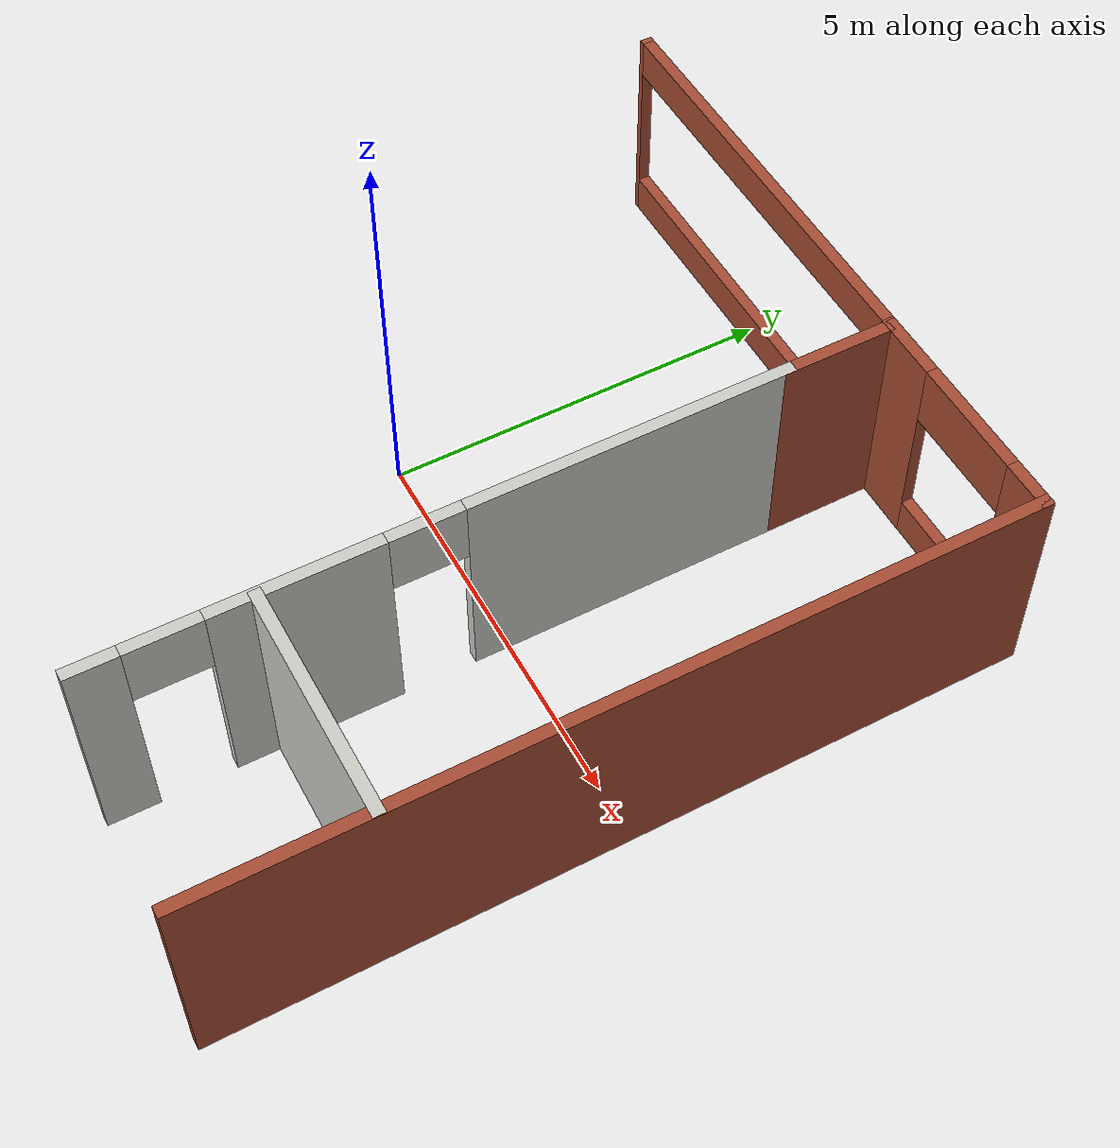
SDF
<sdf version="1.6">
 <model name="house">
  <link name="Wall_3">
   <pose>0.074445 4.925 0 0 -0 0</pose>
   <visual name="Wall_3_Visual_0">
    <pose>-2.76234 0 1.4 0 -0 0</pose>
    <geometry><box><size>0.07533 0.15 2.8</size></box></geometry>
    <material>
     <script><uri>file://media/materials/scripts/gazebo.material</uri><name>Gazebo/Bricks</name></script>
     <ambient>1 1 1 1</ambient>
     <shader type="pixel"/>
     <diffuse>1 1 1 1</diffuse>
     <specular>0.2 0.2 0.2 1</specular>
     <emissive>0 0 0 1</emissive>
    </material>
    <meta><layer>0</layer></meta>
   </visual>
   <visual name="Wall_3_Visual_2">
    <pose>2.71166 0 1.65 0 -0 0</pose>
    <geometry><box><size>0.17667 0.15 2.3</size></box></geometry>
    <material>
     <script><uri>file://media/materials/scripts/gazebo.material</uri><name>Gazebo/Bricks</name></script>
     <ambient>1 1 1 1</ambient>
     <shader type="pixel"/>
     <diffuse>1 1 1 1</diffuse>
     <specular>0.2 0.2 0.2 1</specular>
     <emissive>0 0 0 1</emissive>
    </material>
    <meta><layer>0</layer></meta>
   </visual>
   <visual name="Wall_3_Visual_1">
    <pose>0.037665 0 0.25 0 -0 0</pose>
    <geometry><box><size>5.52467 0.15 0.5</size></box></geometry>
    <material>
     <script><uri>file://media/materials/scripts/gazebo.material</uri><name>Gazebo/Bricks</name></script>
     <ambient>1 1 1 1</ambient>
     <shader type="pixel"/>
     <diffuse>1 1 1 1</diffuse>
     <specular>0.2 0.2 0.2 1</specular>
     <emissive>0 0 0 1</emissive>
    </material>
    <meta><layer>0</layer></meta>
   </visual>
   <visual name="Wall_3_Visual_3">
    <pose>-0.05067 0 2.55 0 -0 0</pose>
    <geometry><box><size>5.348 0.15 0.5</size></box></geometry>
    <material>
     <script><uri>file://media/materials/scripts/gazebo.material</uri><name>Gazebo/Bricks</name></script>
     <ambient>1 1 1 1</ambient>
     <shader type="pixel"/>
     <diffuse>1 1 1 1</diffuse>
     <specular>0.2 0.2 0.2 1</specular>
     <emissive>0 0 0 1</emissive>
    </material>
    <meta><layer>0</layer></meta>
   </visual>
   <collision name="Wall_3_Collision_0">
    <pose>-2.76234 0 1.4 0 -0 0</pose>
    <geometry><box><size>0.07533 0.15 2.8</size></box></geometry>
    <surface>
     <friction>
      <ode><mu>1</mu><mu2>1</mu2><fdir1>0 0 0</fdir1><slip1>0</slip1><slip2>0</slip2></ode>
      <torsional>
       <coefficient>1</coefficient>
       <patch_radius>0</patch_radius>
       <surface_radius>0</surface_radius>
       <use_patch_radius>1</use_patch_radius>
       <ode><slip>0</slip></ode>
      </torsional>
     </friction>
     <bounce><restitution_coefficient>0</restitution_coefficient><threshold>1e+06</threshold></bounce>
     <contact>
      <collide_without_contact>0</collide_without_contact>
      <collide_without_contact_bitmask>1</collide_without_contact_bitmask>
      <collide_bitmask>1</collide_bitmask>
      <ode>
       <soft_cfm>0</soft_cfm>
       <soft_erp>0.2</soft_erp>
       <kp>1e+13</kp>
       <kd>1</kd>
       <max_vel>0.01</max_vel>
       <min_depth>0</min_depth>
      </ode>
      <bullet>
       <split_impulse>1</split_impulse>
       <split_impulse_penetration_threshold>-0.01</split_impulse_penetration_threshold>
       <soft_cfm>0</soft_cfm>
       <soft_erp>0.2</soft_erp>
       <kp>1e+13</kp>
       <kd>1</kd>
      </bullet>
     </contact>
    </surface>
   </collision>
   <collision name="Wall_3_Collision_1">
    <pose>0.037665 0 0.25 0 -0 0</pose>
    <geometry><box><size>5.52467 0.15 0.5</size></box></geometry>
    <surface>
     <friction>
      <ode><mu>1</mu><mu2>1</mu2><fdir1>0 0 0</fdir1><slip1>0</slip1><slip2>0</slip2></ode>
      <torsional>
       <coefficient>1</coefficient>
       <patch_radius>0</patch_radius>
       <surface_radius>0</surface_radius>
       <use_patch_radius>1</use_patch_radius>
       <ode><slip>0</slip></ode>
      </torsional>
     </friction>
     <bounce><restitution_coefficient>0</restitution_coefficient><threshold>1e+06</threshold></bounce>
     <contact>
      <collide_without_contact>0</collide_without_contact>
      <collide_without_contact_bitmask>1</collide_without_contact_bitmask>
      <collide_bitmask>1</collide_bitmask>
      <ode>
       <soft_cfm>0</soft_cfm>
       <soft_erp>0.2</soft_erp>
       <kp>1e+13</kp>
       <kd>1</kd>
       <max_vel>0.01</max_vel>
       <min_depth>0</min_depth>
      </ode>
      <bullet>
       <split_impulse>1</split_impulse>
       <split_impulse_penetration_threshold>-0.01</split_impulse_penetration_threshold>
       <soft_cfm>0</soft_cfm>
       <soft_erp>0.2</soft_erp>
       <kp>1e+13</kp>
       <kd>1</kd>
      </bullet>
     </contact>
    </surface>
   </collision>
   <collision name="Wall_3_Collision_2">
    <pose>2.71166 0 1.65 0 -0 0</pose>
    <geometry><box><size>0.17667 0.15 2.3</size></box></geometry>
    <surface>
     <friction>
      <ode><mu>1</mu><mu2>1</mu2><fdir1>0 0 0</fdir1><slip1>0</slip1><slip2>0</slip2></ode>
      <torsional>
       <coefficient>1</coefficient>
       <patch_radius>0</patch_radius>
       <surface_radius>0</surface_radius>
       <use_patch_radius>1</use_patch_radius>
       <ode><slip>0</slip></ode>
      </torsional>
     </friction>
     <bounce><restitution_coefficient>0</restitution_coefficient><threshold>1e+06</threshold></bounce>
     <contact>
      <collide_without_contact>0</collide_without_contact>
      <collide_without_contact_bitmask>1</collide_without_contact_bitmask>
      <collide_bitmask>1</collide_bitmask>
      <ode>
       <soft_cfm>0</soft_cfm>
       <soft_erp>0.2</soft_erp>
       <kp>1e+13</kp>
       <kd>1</kd>
       <max_vel>0.01</max_vel>
       <min_depth>0</min_depth>
      </ode>
      <bullet>
       <split_impulse>1</split_impulse>
       <split_impulse_penetration_threshold>-0.01</split_impulse_penetration_threshold>
       <soft_cfm>0</soft_cfm>
       <soft_erp>0.2</soft_erp>
       <kp>1e+13</kp>
       <kd>1</kd>
      </bullet>
     </contact>
    </surface>
   </collision>
   <collision name="Wall_3_Collision_3">
    <pose>-0.05067 0 2.55 0 -0 0</pose>
    <geometry><box><size>5.348 0.15 0.5</size></box></geometry>
    <surface>
     <friction>
      <ode><mu>1</mu><mu2>1</mu2><fdir1>0 0 0</fdir1><slip1>0</slip1><slip2>0</slip2></ode>
      <torsional>
       <coefficient>1</coefficient>
       <patch_radius>0</patch_radius>
       <surface_radius>0</surface_radius>
       <use_patch_radius>1</use_patch_radius>
       <ode><slip>0</slip></ode>
      </torsional>
     </friction>
     <bounce><restitution_coefficient>0</restitution_coefficient><threshold>1e+06</threshold></bounce>
     <contact>
      <collide_without_contact>0</collide_without_contact>
      <collide_without_contact_bitmask>1</collide_without_contact_bitmask>
      <collide_bitmask>1</collide_bitmask>
      <ode>
       <soft_cfm>0</soft_cfm>
       <soft_erp>0.2</soft_erp>
       <kp>1e+13</kp>
       <kd>1</kd>
       <max_vel>0.01</max_vel>
       <min_depth>0</min_depth>
      </ode>
      <bullet>
       <split_impulse>1</split_impulse>
       <split_impulse_penetration_threshold>-0.01</split_impulse_penetration_threshold>
       <soft_cfm>0</soft_cfm>
       <soft_erp>0.2</soft_erp>
       <kp>1e+13</kp>
       <kd>1</kd>
      </bullet>
     </contact>
    </surface>
   </collision>
  </link>
  <link name="Wall_36">
   <pose>2.79944 4.2395 0 0 0 -1.5708</pose>
   <visual name="Wall_36_Visual">
    <pose>0 0 1.4 0 -0 0</pose>
    <geometry><box><size>1.521 0.15 2.8</size></box></geometry>
    <material>
     <script><uri>file://media/materials/scripts/gazebo.material</uri><name>Gazebo/Bricks</name></script>
     <ambient>1 1 1 1</ambient>
     <shader type="pixel"/>
     <diffuse>1 1 1 1</diffuse>
     <specular>0.2 0.2 0.2 1</specular>
     <emissive>0 0 0 1</emissive>
    </material>
    <meta><layer>0</layer></meta>
   </visual>
   <collision name="Wall_36_Collision">
    <pose>0 0 1.4 0 -0 0</pose>
    <geometry><box><size>1.521 0.15 2.8</size></box></geometry>
    <surface>
     <friction>
      <ode><mu>1</mu><mu2>1</mu2><fdir1>0 0 0</fdir1><slip1>0</slip1><slip2>0</slip2></ode>
      <torsional>
       <coefficient>1</coefficient>
       <patch_radius>0</patch_radius>
       <surface_radius>0</surface_radius>
       <use_patch_radius>1</use_patch_radius>
       <ode><slip>0</slip></ode>
      </torsional>
     </friction>
     <bounce><restitution_coefficient>0</restitution_coefficient><threshold>1e+06</threshold></bounce>
     <contact>
      <collide_without_contact>0</collide_without_contact>
      <collide_without_contact_bitmask>1</collide_without_contact_bitmask>
      <collide_bitmask>1</collide_bitmask>
      <ode>
       <soft_cfm>0</soft_cfm>
       <soft_erp>0.2</soft_erp>
       <kp>1e+13</kp>
       <kd>1</kd>
       <max_vel>0.01</max_vel>
       <min_depth>0</min_depth>
      </ode>
      <bullet>
       <split_impulse>1</split_impulse>
       <split_impulse_penetration_threshold>-0.01</split_impulse_penetration_threshold>
       <soft_cfm>0</soft_cfm>
       <soft_erp>0.2</soft_erp>
       <kp>1e+13</kp>
       <kd>1</kd>
      </bullet>
     </contact>
    </surface>
   </collision>
  </link>
  <link name="Wall_4">
   <pose>4.22444 4.925 0 0 -0 0</pose>
   <visual name="Wall_4_Visual_0">
    <pose>-1.07575 0 1.4 0 -0 0</pose>
    <geometry><box><size>0.848504 0.15 2.8</size></box></geometry>
    <material>
     <script><uri>file://media/materials/scripts/gazebo.material</uri><name>Gazebo/Bricks</name></script>
     <ambient>1 1 1 1</ambient>
     <shader type="pixel"/>
     <diffuse>1 1 1 1</diffuse>
     <specular>0.2 0.2 0.2 1</specular>
     <emissive>0 0 0 1</emissive>
    </material>
    <meta><layer>0</layer></meta>
   </visual>
   <visual name="Wall_4_Visual_1">
    <pose>0.424252 0 0.25 0 -0 0</pose>
    <geometry><box><size>2.1515 0.15 0.5</size></box></geometry>
    <material>
     <script><uri>file://media/materials/scripts/gazebo.material</uri><name>Gazebo/Bricks</name></script>
     <ambient>1 1 1 1</ambient>
     <shader type="pixel"/>
     <diffuse>1 1 1 1</diffuse>
     <specular>0.2 0.2 0.2 1</specular>
     <emissive>0 0 0 1</emissive>
    </material>
    <meta><layer>0</layer></meta>
   </visual>
   <visual name="Wall_4_Visual_2">
    <pose>1.17425 0 1.65 0 -0 0</pose>
    <geometry><box><size>0.651496 0.15 2.3</size></box></geometry>
    <material>
     <script><uri>file://media/materials/scripts/gazebo.material</uri><name>Gazebo/Bricks</name></script>
     <ambient>1 1 1 1</ambient>
     <shader type="pixel"/>
     <diffuse>1 1 1 1</diffuse>
     <specular>0.2 0.2 0.2 1</specular>
     <emissive>0 0 0 1</emissive>
    </material>
    <meta><layer>0</layer></meta>
   </visual>
   <visual name="Wall_4_Visual_3">
    <pose>0.098504 0 2.4 0 -0 0</pose>
    <geometry><box><size>1.5 0.15 0.8</size></box></geometry>
    <material>
     <script><uri>file://media/materials/scripts/gazebo.material</uri><name>Gazebo/Bricks</name></script>
     <ambient>1 1 1 1</ambient>
     <shader type="pixel"/>
     <diffuse>1 1 1 1</diffuse>
     <specular>0.2 0.2 0.2 1</specular>
     <emissive>0 0 0 1</emissive>
    </material>
    <meta><layer>0</layer></meta>
   </visual>
   <collision name="Wall_4_Collision_0">
    <pose>-1.07575 0 1.4 0 -0 0</pose>
    <geometry><box><size>0.848504 0.15 2.8</size></box></geometry>
    <surface>
     <friction>
      <ode><mu>1</mu><mu2>1</mu2><fdir1>0 0 0</fdir1><slip1>0</slip1><slip2>0</slip2></ode>
      <torsional>
       <coefficient>1</coefficient>
       <patch_radius>0</patch_radius>
       <surface_radius>0</surface_radius>
       <use_patch_radius>1</use_patch_radius>
       <ode><slip>0</slip></ode>
      </torsional>
     </friction>
     <bounce><restitution_coefficient>0</restitution_coefficient><threshold>1e+06</threshold></bounce>
     <contact>
      <collide_without_contact>0</collide_without_contact>
      <collide_without_contact_bitmask>1</collide_without_contact_bitmask>
      <collide_bitmask>1</collide_bitmask>
      <ode>
       <soft_cfm>0</soft_cfm>
       <soft_erp>0.2</soft_erp>
       <kp>1e+13</kp>
       <kd>1</kd>
       <max_vel>0.01</max_vel>
       <min_depth>0</min_depth>
      </ode>
      <bullet>
       <split_impulse>1</split_impulse>
       <split_impulse_penetration_threshold>-0.01</split_impulse_penetration_threshold>
       <soft_cfm>0</soft_cfm>
       <soft_erp>0.2</soft_erp>
       <kp>1e+13</kp>
       <kd>1</kd>
      </bullet>
     </contact>
    </surface>
   </collision>
   <collision name="Wall_4_Collision_1">
    <pose>0.424252 0 0.25 0 -0 0</pose>
    <geometry><box><size>2.1515 0.15 0.5</size></box></geometry>
    <surface>
     <friction>
      <ode><mu>1</mu><mu2>1</mu2><fdir1>0 0 0</fdir1><slip1>0</slip1><slip2>0</slip2></ode>
      <torsional>
       <coefficient>1</coefficient>
       <patch_radius>0</patch_radius>
       <surface_radius>0</surface_radius>
       <use_patch_radius>1</use_patch_radius>
       <ode><slip>0</slip></ode>
      </torsional>
     </friction>
     <bounce><restitution_coefficient>0</restitution_coefficient><threshold>1e+06</threshold></bounce>
     <contact>
      <collide_without_contact>0</collide_without_contact>
      <collide_without_contact_bitmask>1</collide_without_contact_bitmask>
      <collide_bitmask>1</collide_bitmask>
      <ode>
       <soft_cfm>0</soft_cfm>
       <soft_erp>0.2</soft_erp>
       <kp>1e+13</kp>
       <kd>1</kd>
       <max_vel>0.01</max_vel>
       <min_depth>0</min_depth>
      </ode>
      <bullet>
       <split_impulse>1</split_impulse>
       <split_impulse_penetration_threshold>-0.01</split_impulse_penetration_threshold>
       <soft_cfm>0</soft_cfm>
       <soft_erp>0.2</soft_erp>
       <kp>1e+13</kp>
       <kd>1</kd>
      </bullet>
     </contact>
    </surface>
   </collision>
   <collision name="Wall_4_Collision_2">
    <pose>1.17425 0 1.65 0 -0 0</pose>
    <geometry><box><size>0.651496 0.15 2.3</size></box></geometry>
    <surface>
     <friction>
      <ode><mu>1</mu><mu2>1</mu2><fdir1>0 0 0</fdir1><slip1>0</slip1><slip2>0</slip2></ode>
      <torsional>
       <coefficient>1</coefficient>
       <patch_radius>0</patch_radius>
       <surface_radius>0</surface_radius>
       <use_patch_radius>1</use_patch_radius>
       <ode><slip>0</slip></ode>
      </torsional>
     </friction>
     <bounce><restitution_coefficient>0</restitution_coefficient><threshold>1e+06</threshold></bounce>
     <contact>
      <collide_without_contact>0</collide_without_contact>
      <collide_without_contact_bitmask>1</collide_without_contact_bitmask>
      <collide_bitmask>1</collide_bitmask>
      <ode>
       <soft_cfm>0</soft_cfm>
       <soft_erp>0.2</soft_erp>
       <kp>1e+13</kp>
       <kd>1</kd>
       <max_vel>0.01</max_vel>
       <min_depth>0</min_depth>
      </ode>
      <bullet>
       <split_impulse>1</split_impulse>
       <split_impulse_penetration_threshold>-0.01</split_impulse_penetration_threshold>
       <soft_cfm>0</soft_cfm>
       <soft_erp>0.2</soft_erp>
       <kp>1e+13</kp>
       <kd>1</kd>
      </bullet>
     </contact>
    </surface>
   </collision>
   <collision name="Wall_4_Collision_3">
    <pose>0.098504 0 2.4 0 -0 0</pose>
    <geometry><box><size>1.5 0.15 0.8</size></box></geometry>
    <surface>
     <friction>
      <ode><mu>1</mu><mu2>1</mu2><fdir1>0 0 0</fdir1><slip1>0</slip1><slip2>0</slip2></ode>
      <torsional>
       <coefficient>1</coefficient>
       <patch_radius>0</patch_radius>
       <surface_radius>0</surface_radius>
       <use_patch_radius>1</use_patch_radius>
       <ode><slip>0</slip></ode>
      </torsional>
     </friction>
     <bounce><restitution_coefficient>0</restitution_coefficient><threshold>1e+06</threshold></bounce>
     <contact>
      <collide_without_contact>0</collide_without_contact>
      <collide_without_contact_bitmask>1</collide_without_contact_bitmask>
      <collide_bitmask>1</collide_bitmask>
      <ode>
       <soft_cfm>0</soft_cfm>
       <soft_erp>0.2</soft_erp>
       <kp>1e+13</kp>
       <kd>1</kd>
       <max_vel>0.01</max_vel>
       <min_depth>0</min_depth>
      </ode>
      <bullet>
       <split_impulse>1</split_impulse>
       <split_impulse_penetration_threshold>-0.01</split_impulse_penetration_threshold>
       <soft_cfm>0</soft_cfm>
       <soft_erp>0.2</soft_erp>
       <kp>1e+13</kp>
       <kd>1</kd>
      </bullet>
     </contact>
    </surface>
   </collision>
  </link>
  <link name="Wall_41">
   <pose>2.79944 -0.621 0 0 -0 1.5708</pose>
   <inertial>
    <mass>1</mass>
    <inertia><ixx>1</ixx><ixy>0</ixy><ixz>0</ixz><iyy>1</iyy><iyz>0</iyz><izz>1</izz></inertia>
   </inertial>
   <visual name="Wall_41_Visual_0">
    <pose>-3.9395 0 1.4 0 -0 0</pose>
    <geometry><box><size>0.621 0.15 2.8</size></box></geometry>
    <material>
     <script><uri>file://media/materials/scripts/gazebo.material</uri><name>Gazebo/CeilingTiled</name></script>
     <ambient>1 1 1 1</ambient>
     <shader type="pixel"><normal_map>__default__</normal_map></shader>
     <diffuse>1 1 1 1</diffuse>
     <specular>0 0 0 1</specular>
     <emissive>0 0 0 1</emissive>
    </material>
    <meta><layer>0</layer></meta>
   </visual>
   <visual name="Wall_41_Visual_1">
    <pose>-1.71426 0 1.4 0 -0 0</pose>
    <geometry><box><size>2.02948 0.15 2.8</size></box></geometry>
    <material>
     <script><uri>file://media/materials/scripts/gazebo.material</uri><name>Gazebo/CeilingTiled</name></script>
     <ambient>1 1 1 1</ambient>
     <shader type="pixel"><normal_map>__default__</normal_map></shader>
     <diffuse>1 1 1 1</diffuse>
     <specular>0 0 0 1</specular>
     <emissive>0 0 0 1</emissive>
    </material>
    <meta><layer>0</layer></meta>
   </visual>
   <visual name="Wall_41_Visual_2">
    <pose>2.22524 0 1.4 0 -0 0</pose>
    <geometry><box><size>4.04952 0.15 2.8</size></box></geometry>
    <material>
     <script><uri>file://media/materials/scripts/gazebo.material</uri><name>Gazebo/CeilingTiled</name></script>
     <ambient>1 1 1 1</ambient>
     <shader type="pixel"><normal_map>__default__</normal_map></shader>
     <diffuse>1 1 1 1</diffuse>
     <specular>0 0 0 1</specular>
     <emissive>0 0 0 1</emissive>
    </material>
    <meta><layer>0</layer></meta>
   </visual>
   <visual name="Wall_41_Visual_5">
    <pose>-3.179 0 2.4 0 -0 0</pose>
    <geometry><box><size>0.9 0.15 0.8</size></box></geometry>
    <material>
     <script><uri>file://media/materials/scripts/gazebo.material</uri><name>Gazebo/CeilingTiled</name></script>
     <ambient>1 1 1 1</ambient>
     <shader type="pixel"><normal_map>__default__</normal_map></shader>
     <diffuse>1 1 1 1</diffuse>
     <specular>0 0 0 1</specular>
     <emissive>0 0 0 1</emissive>
    </material>
    <meta><layer>0</layer></meta>
   </visual>
   <visual name="Wall_41_Visual_6">
    <pose>-0.249524 0 2.4 0 -0 0</pose>
    <geometry><box><size>0.9 0.15 0.8</size></box></geometry>
    <material>
     <script><uri>file://media/materials/scripts/gazebo.material</uri><name>Gazebo/CeilingTiled</name></script>
     <ambient>1 1 1 1</ambient>
     <shader type="pixel"><normal_map>__default__</normal_map></shader>
     <diffuse>1 1 1 1</diffuse>
     <specular>0 0 0 1</specular>
     <emissive>0 0 0 1</emissive>
    </material>
    <meta><layer>0</layer></meta>
   </visual>
   <collision name="Wall_41_Collision_5">
    <pose>-3.179 0 2.4 0 -0 0</pose>
    <geometry><box><size>0.9 0.15 0.8</size></box></geometry>
    <surface>
     <friction>
      <ode><mu>1</mu><mu2>1</mu2><fdir1>0 0 0</fdir1><slip1>0</slip1><slip2>0</slip2></ode>
      <torsional>
       <coefficient>1</coefficient>
       <patch_radius>0</patch_radius>
       <surface_radius>0</surface_radius>
       <use_patch_radius>1</use_patch_radius>
       <ode><slip>0</slip></ode>
      </torsional>
     </friction>
     <bounce><restitution_coefficient>0</restitution_coefficient><threshold>1e+06</threshold></bounce>
     <contact>
      <collide_without_contact>0</collide_without_contact>
      <collide_without_contact_bitmask>1</collide_without_contact_bitmask>
      <collide_bitmask>1</collide_bitmask>
      <ode>
       <soft_cfm>0</soft_cfm>
       <soft_erp>0.2</soft_erp>
       <kp>1e+13</kp>
       <kd>1</kd>
       <max_vel>0.01</max_vel>
       <min_depth>0</min_depth>
      </ode>
      <bullet>
       <split_impulse>1</split_impulse>
       <split_impulse_penetration_threshold>-0.01</split_impulse_penetration_threshold>
       <soft_cfm>0</soft_cfm>
       <soft_erp>0.2</soft_erp>
       <kp>1e+13</kp>
       <kd>1</kd>
      </bullet>
     </contact>
    </surface>
   </collision>
   <collision name="Wall_41_Collision_0">
    <pose>-3.9395 0 1.4 0 -0 0</pose>
    <geometry><box><size>0.621 0.15 2.8</size></box></geometry>
    <surface>
     <friction>
      <ode><mu>1</mu><mu2>1</mu2><fdir1>0 0 0</fdir1><slip1>0</slip1><slip2>0</slip2></ode>
      <torsional>
       <coefficient>1</coefficient>
       <patch_radius>0</patch_radius>
       <surface_radius>0</surface_radius>
       <use_patch_radius>1</use_patch_radius>
       <ode><slip>0</slip></ode>
      </torsional>
     </friction>
     <bounce><restitution_coefficient>0</restitution_coefficient><threshold>1e+06</threshold></bounce>
     <contact>
      <collide_without_contact>0</collide_without_contact>
      <collide_without_contact_bitmask>1</collide_without_contact_bitmask>
      <collide_bitmask>1</collide_bitmask>
      <ode>
       <soft_cfm>0</soft_cfm>
       <soft_erp>0.2</soft_erp>
       <kp>1e+13</kp>
       <kd>1</kd>
       <max_vel>0.01</max_vel>
       <min_depth>0</min_depth>
      </ode>
      <bullet>
       <split_impulse>1</split_impulse>
       <split_impulse_penetration_threshold>-0.01</split_impulse_penetration_threshold>
       <soft_cfm>0</soft_cfm>
       <soft_erp>0.2</soft_erp>
       <kp>1e+13</kp>
       <kd>1</kd>
      </bullet>
     </contact>
    </surface>
   </collision>
   <collision name="Wall_41_Collision_2">
    <pose>2.22524 0 1.4 0 -0 0</pose>
    <geometry><box><size>4.04952 0.15 2.8</size></box></geometry>
    <surface>
     <friction>
      <ode><mu>1</mu><mu2>1</mu2><fdir1>0 0 0</fdir1><slip1>0</slip1><slip2>0</slip2></ode>
      <torsional>
       <coefficient>1</coefficient>
       <patch_radius>0</patch_radius>
       <surface_radius>0</surface_radius>
       <use_patch_radius>1</use_patch_radius>
       <ode><slip>0</slip></ode>
      </torsional>
     </friction>
     <bounce><restitution_coefficient>0</restitution_coefficient><threshold>1e+06</threshold></bounce>
     <contact>
      <collide_without_contact>0</collide_without_contact>
      <collide_without_contact_bitmask>1</collide_without_contact_bitmask>
      <collide_bitmask>1</collide_bitmask>
      <ode>
       <soft_cfm>0</soft_cfm>
       <soft_erp>0.2</soft_erp>
       <kp>1e+13</kp>
       <kd>1</kd>
       <max_vel>0.01</max_vel>
       <min_depth>0</min_depth>
      </ode>
      <bullet>
       <split_impulse>1</split_impulse>
       <split_impulse_penetration_threshold>-0.01</split_impulse_penetration_threshold>
       <soft_cfm>0</soft_cfm>
       <soft_erp>0.2</soft_erp>
       <kp>1e+13</kp>
       <kd>1</kd>
      </bullet>
     </contact>
    </surface>
   </collision>
   <collision name="Wall_41_Collision_1">
    <pose>-1.71426 0 1.4 0 -0 0</pose>
    <geometry><box><size>2.02948 0.15 2.8</size></box></geometry>
    <surface>
     <friction>
      <ode><mu>1</mu><mu2>1</mu2><fdir1>0 0 0</fdir1><slip1>0</slip1><slip2>0</slip2></ode>
      <torsional>
       <coefficient>1</coefficient>
       <patch_radius>0</patch_radius>
       <surface_radius>0</surface_radius>
       <use_patch_radius>1</use_patch_radius>
       <ode><slip>0</slip></ode>
      </torsional>
     </friction>
     <bounce><restitution_coefficient>0</restitution_coefficient><threshold>1e+06</threshold></bounce>
     <contact>
      <collide_without_contact>0</collide_without_contact>
      <collide_without_contact_bitmask>1</collide_without_contact_bitmask>
      <collide_bitmask>1</collide_bitmask>
      <ode>
       <soft_cfm>0</soft_cfm>
       <soft_erp>0.2</soft_erp>
       <kp>1e+13</kp>
       <kd>1</kd>
       <max_vel>0.01</max_vel>
       <min_depth>0</min_depth>
      </ode>
      <bullet>
       <split_impulse>1</split_impulse>
       <split_impulse_penetration_threshold>-0.01</split_impulse_penetration_threshold>
       <soft_cfm>0</soft_cfm>
       <soft_erp>0.2</soft_erp>
       <kp>1e+13</kp>
       <kd>1</kd>
      </bullet>
     </contact>
    </surface>
   </collision>
   <collision name="Wall_41_Collision_6">
    <pose>-0.249524 0 2.4 0 -0 0</pose>
    <geometry><box><size>0.9 0.15 0.8</size></box></geometry>
    <surface>
     <friction>
      <ode><mu>1</mu><mu2>1</mu2><fdir1>0 0 0</fdir1><slip1>0</slip1><slip2>0</slip2></ode>
      <torsional>
       <coefficient>1</coefficient>
       <patch_radius>0</patch_radius>
       <surface_radius>0</surface_radius>
       <use_patch_radius>1</use_patch_radius>
       <ode><slip>0</slip></ode>
      </torsional>
     </friction>
     <bounce><restitution_coefficient>0</restitution_coefficient><threshold>1e+06</threshold></bounce>
     <contact>
      <collide_without_contact>0</collide_without_contact>
      <collide_without_contact_bitmask>1</collide_without_contact_bitmask>
      <collide_bitmask>1</collide_bitmask>
      <ode>
       <soft_cfm>0</soft_cfm>
       <soft_erp>0.2</soft_erp>
       <kp>1e+13</kp>
       <kd>1</kd>
       <max_vel>0.01</max_vel>
       <min_depth>0</min_depth>
      </ode>
      <bullet>
       <split_impulse>1</split_impulse>
       <split_impulse_penetration_threshold>-0.01</split_impulse_penetration_threshold>
       <soft_cfm>0</soft_cfm>
       <soft_erp>0.2</soft_erp>
       <kp>1e+13</kp>
       <kd>1</kd>
      </bullet>
     </contact>
    </surface>
   </collision>
  </link>
  <link name="Wall_49">
   <pose>4.23556 -2.77325 0 0 -0 3.14159</pose>
   <inertial>
    <mass>1</mass>
    <inertia><ixx>1</ixx><ixy>0</ixy><ixz>0</ixz><iyy>1</iyy><iyz>0</iyz><izz>1</izz></inertia>
   </inertial>
   <visual name="Wall_49_Visual">
    <pose>0 0 1.401 0 -0 0</pose>
    <geometry><box><size>2.96 0.15 2.8</size></box></geometry>
    <material>
     <script><uri>file://media/materials/scripts/gazebo.material</uri><name>Gazebo/CeilingTiled</name></script>
     <ambient>1 1 1 1</ambient>
     <shader type="pixel"><normal_map>__default__</normal_map></shader>
     <diffuse>1 1 1 1</diffuse>
     <specular>0 0 0 1</specular>
     <emissive>0 0 0 1</emissive>
    </material>
    <meta><layer>0</layer></meta>
   </visual>
   <collision name="Wall_49_Collision">
    <pose>0 0 1.401 0 -0 0</pose>
    <geometry><box><size>2.96 0.15 2.8</size></box></geometry>
    <surface>
     <friction>
      <ode><mu>1</mu><mu2>1</mu2><fdir1>0 0 0</fdir1><slip1>0</slip1><slip2>0</slip2></ode>
      <torsional>
       <coefficient>1</coefficient>
       <patch_radius>0</patch_radius>
       <surface_radius>0</surface_radius>
       <use_patch_radius>1</use_patch_radius>
       <ode><slip>0</slip></ode>
      </torsional>
     </friction>
     <bounce><restitution_coefficient>0</restitution_coefficient><threshold>1e+06</threshold></bounce>
     <contact>
      <collide_without_contact>0</collide_without_contact>
      <collide_without_contact_bitmask>1</collide_without_contact_bitmask>
      <collide_bitmask>1</collide_bitmask>
      <ode>
       <soft_cfm>0</soft_cfm>
       <soft_erp>0.2</soft_erp>
       <kp>1e+13</kp>
       <kd>1</kd>
       <max_vel>0.01</max_vel>
       <min_depth>0</min_depth>
      </ode>
      <bullet>
       <split_impulse>1</split_impulse>
       <split_impulse_penetration_threshold>-0.01</split_impulse_penetration_threshold>
       <soft_cfm>0</soft_cfm>
       <soft_erp>0.2</soft_erp>
       <kp>1e+13</kp>
       <kd>1</kd>
      </bullet>
     </contact>
    </surface>
   </collision>
  </link>
  <link name="Wall_5">
   <pose>5.64944 0 0 0 0 -1.5708</pose>
   <visual name="Wall_5_Visual">
    <pose>0 0 1.4 0 -0 0</pose>
    <geometry><box><size>10 0.15 2.8</size></box></geometry>
    <material>
     <script><uri>file://media/materials/scripts/gazebo.material</uri><name>Gazebo/Bricks</name></script>
     <ambient>1 1 1 1</ambient>
     <shader type="pixel"/>
     <diffuse>1 1 1 1</diffuse>
     <specular>0.2 0.2 0.2 1</specular>
     <emissive>0 0 0 1</emissive>
    </material>
    <meta><layer>0</layer></meta>
   </visual>
   <collision name="Wall_5_Collision">
    <pose>0 0 1.4 0 -0 0</pose>
    <geometry><box><size>10 0.15 2.8</size></box></geometry>
    <surface>
     <friction>
      <ode><mu>1</mu><mu2>1</mu2><fdir1>0 0 0</fdir1><slip1>0</slip1><slip2>0</slip2></ode>
      <torsional>
       <coefficient>1</coefficient>
       <patch_radius>0</patch_radius>
       <surface_radius>0</surface_radius>
       <use_patch_radius>1</use_patch_radius>
       <ode><slip>0</slip></ode>
      </torsional>
     </friction>
     <bounce><restitution_coefficient>0</restitution_coefficient><threshold>1e+06</threshold></bounce>
     <contact>
      <collide_without_contact>0</collide_without_contact>
      <collide_without_contact_bitmask>1</collide_without_contact_bitmask>
      <collide_bitmask>1</collide_bitmask>
      <ode>
       <soft_cfm>0</soft_cfm>
       <soft_erp>0.2</soft_erp>
       <kp>1e+13</kp>
       <kd>1</kd>
       <max_vel>0.01</max_vel>
       <min_depth>0</min_depth>
      </ode>
      <bullet>
       <split_impulse>1</split_impulse>
       <split_impulse_penetration_threshold>-0.01</split_impulse_penetration_threshold>
       <soft_cfm>0</soft_cfm>
       <soft_erp>0.2</soft_erp>
       <kp>1e+13</kp>
       <kd>1</kd>
      </bullet>
     </contact>
    </surface>
   </collision>
  </link>
  <static>1</static>
 </model>
</sdf>
